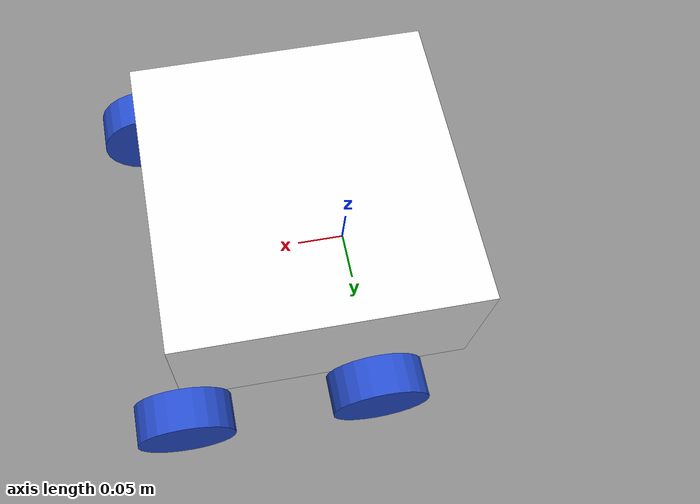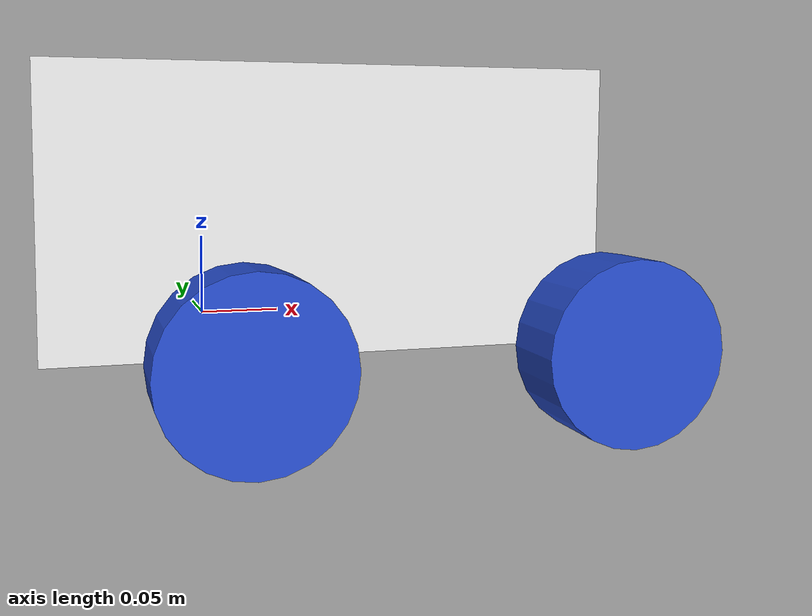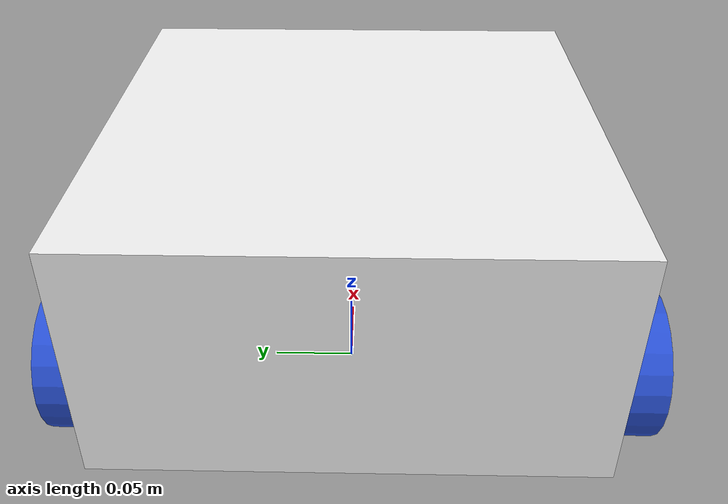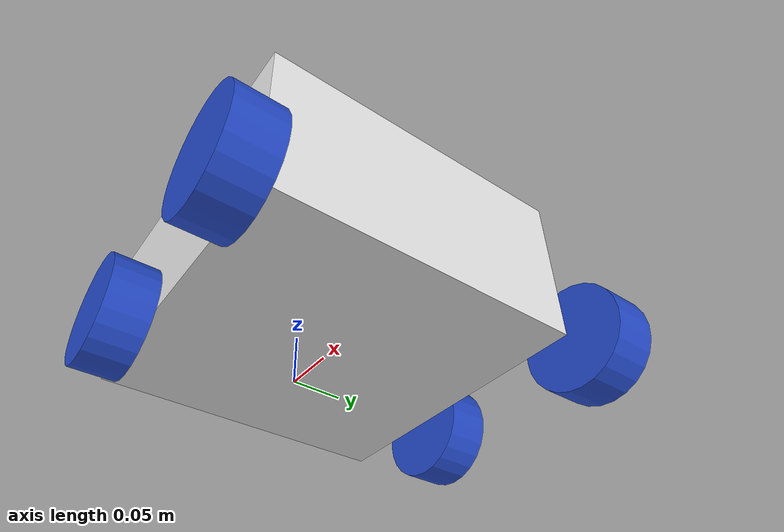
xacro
<?xml version="1.0"?>
<robot xmlns:xacro="http://www.ros.org/wiki/xacro">

    <!-- Example link -->
    <xacro:include filename="inertial_macros.xacro" />

    <!-- Example link -->
    <link name="base_link">
    </link>

    <joint name="base_link" type="fixed">
        <parent link="base_link" />
        <child link="chassis" />
        <origin xyz="-0.1 0 0" />
    </joint>

    <!-- chassis link -->
    <link name="chassis">
        <visual>
            <origin xyz="0.15 0 0.075" />
            <geometry>
                <box size="0.3 0.3 0.15" />
            </geometry>
            <material name="white" />
        </visual>
        <collision>
            <origin xyz="0.15 0 0.075" />
            <geometry>
                <box size="0.3 0.3 0.15" />
            </geometry>
        </collision>
        <xacro:inertial_box mass="0.5" x="0.3" y="0.3" z="0.15">
            <origin xyz="0.15 0 0.075" rpy="0 0 0" />
        </xacro:inertial_box>
    </link>
    <gazebo
        reference="chassis">
        <material>Gazebo/White</material>
    </gazebo>

    <!-- left wheel link -->
    <link name="rear_left_wheel">
        <visual>
            <geometry>
                <cylinder radius="0.05" length="0.04" />
            </geometry>
            <material name="blue" />
        </visual>

        <collision>
            <geometry>
                <sphere radius="0.05" />
            </geometry>
        </collision>

        <xacro:inertial_cylinder mass="0.1" length="0.04" radius="0.05">
            <origin xyz="0 0 0" rpy="0 0 0" />
        </xacro:inertial_cylinder>
    </link>
    <gazebo
        reference="rear_left_wheel">
        <material>Gazebo/blue</material>
        <mu1 value = "0.001" />
        <mu2 value = "0.001" />
    </gazebo>

    <!-- right wheel link -->
    <link name="rear_right_wheel">
        <visual>
            <geometry>
                <cylinder radius="0.05" length="0.04" />
            </geometry>
            <material name="blue" />
        </visual>

        <collision>
            <geometry>
                <sphere radius="0.05" />
            </geometry>
        </collision>

        <xacro:inertial_cylinder mass="0.1" length="0.04" radius="0.05">
            <origin xyz="0 0 0" rpy="0 0 0" />
        </xacro:inertial_cylinder>
    </link>
    <gazebo
        reference="rear_right_wheel">
        <material>Gazebo/blue</material>
        <mu1 value = "0.001" />
        <mu2 value = "0.001" />
    </gazebo>

    <link name="front_right_wheel">
        <visual>
            <geometry>
                <cylinder radius="0.05" length="0.04" />
            </geometry>
            <material name="blue" />
        </visual>

        <collision>
            <geometry>
                <sphere radius="0.05" />
            </geometry>
        </collision>

        <xacro:inertial_cylinder mass="0.1" length="0.04" radius="0.05">
            <origin xyz="0 0 0" rpy="0 0 0" />
        </xacro:inertial_cylinder>
    </link>
    <gazebo reference="front_right_wheel">
        <material>Gazebo/blue</material>
        <mu1 value = "0.001" />
        <mu2 value = "0.001" />
    </gazebo>

    <link name="front_left_wheel">
        <visual>
            <geometry>
                <cylinder radius="0.05" length="0.04" />
            </geometry>
            <material name="blue" />
        </visual>

        <collision>
            <geometry>
                <sphere radius="0.05" />
            </geometry>
        </collision>

        <xacro:inertial_cylinder mass="0.1" length="0.04" radius="0.05">
            <origin xyz="0 0 0" rpy="0 0 0" />
        </xacro:inertial_cylinder>
    </link>
    <gazebo
        reference="front_left_wheel">
        <material>Gazebo/blue</material>
        <mu1 value = "0.001" />
        <mu2 value = "0.001" />
    </gazebo>

    <!-- right wheel joint -->
    <joint name="rear_right_wheel_joint" type="continuous">
        <parent link="base_link" />
        <child link="rear_right_wheel" />
        <origin xyz="0 ${-0.175} 0" rpy="${3.14/2} 0 0" />
        <axis xyz="0 0 -1" />
    </joint>

    <!-- left wheel joint -->
    <joint name="rear_left_wheel_joint" type="continuous">
        <parent link="base_link" />
        <child link="rear_left_wheel" />
        <origin xyz="0 ${0.175} 0" rpy="${-3.14/2} 0 0" />
        <axis xyz="0 0 1" />
    </joint>
    <!-- Conectar el steering_wheel al chasis -->

    <link name="right_steering_link">
        <inertial>
        <origin rpy="0 0 0" xyz="0 0 0" />
        <mass value="1" />
        <inertia ixx="1.0" ixy="0.0" ixz="0.0" iyy="1.0" iyz="0.0" izz="1.0" />
        </inertial>
    </link>

    <link name="left_steering_link">
        <inertial>
        <origin rpy="0 0 0" xyz="0 0 0" />
        <mass value="1" />
        <inertia ixx="1.0" ixy="0.0" ixz="0.0" iyy="1.0" iyz="0.0" izz="1.0" />
        </inertial>
    </link>

    <!-- Conectar right_steering_link al steering_wheel -->
    <joint name="front_right_steer_joint" type="revolute">
        <parent link="base_link" />
        <child link="right_steering_link" />
        <origin xyz="0.20 -0.175 0" />
        <axis xyz="0 0 1" />
        <limit effort="100" lower="-0.5" upper="0.5" velocity="1" />
    </joint>
    <!-- Conectar left_steering_link al steering_wheel -->
    <joint name="front_left_steer_joint" type="revolute">
        <parent link="base_link" />
        <child link="left_steering_link" />
        <origin xyz="0.20  0.175 0" />
        <axis xyz="0 0 1" />
        <limit effort="100" lower="-0.5" upper="0.5" velocity="1" />
    </joint>

    <!-- Conectar el right_steering_link a la llanta delantera derecha -->
    <joint name="front_right_wheel_joint" type="continuous">
        <parent link="right_steering_link" />
        <child link="front_right_wheel" />
        <origin xyz="0 0 0" rpy="-${pi/2} 0 0" />
        <axis xyz="0 0 -1" />
    </joint>  <!-- Conectar el left_steering_link a la llanta delantera
    izquierda -->
    <joint name="front_left_wheel_joint" type="continuous">
        <parent link="left_steering_link" />
        <child link="front_left_wheel" />
        <origin xyz="0 0 0" rpy="-${pi/2} 0 0" />
        <axis xyz="0 0 1" />
    </joint>

    <joint name="base_footprint_joint" type="fixed">
        <parent link="base_link" />
        <child link="base_footprint" />
        <origin xyz="0 0 -0.025" />
    </joint>

    <link name="base_footprint">
    </link>

</robot>
